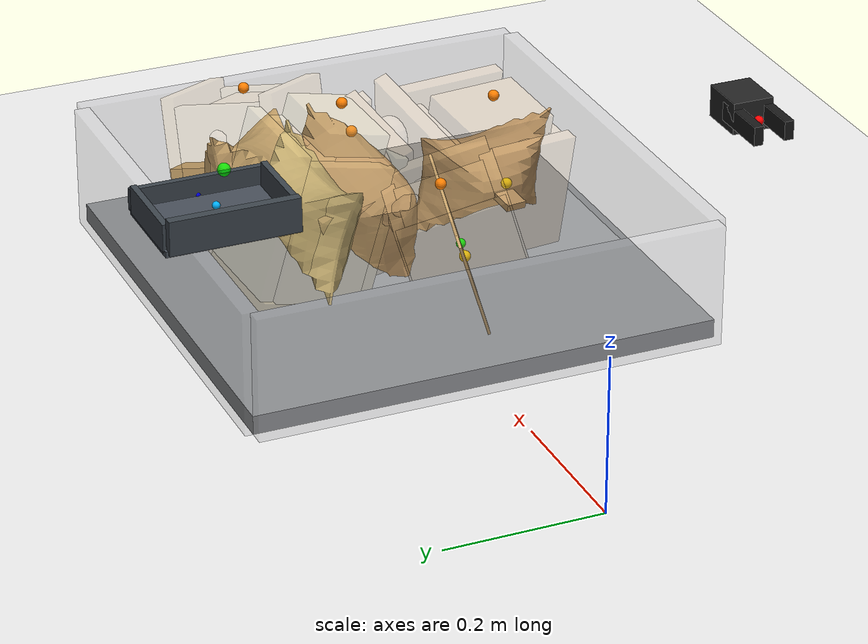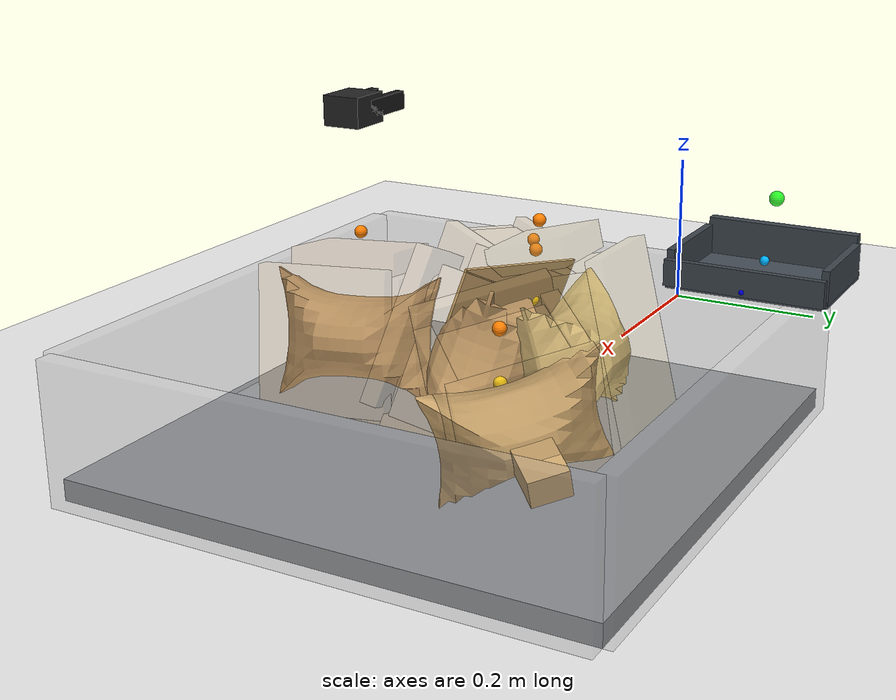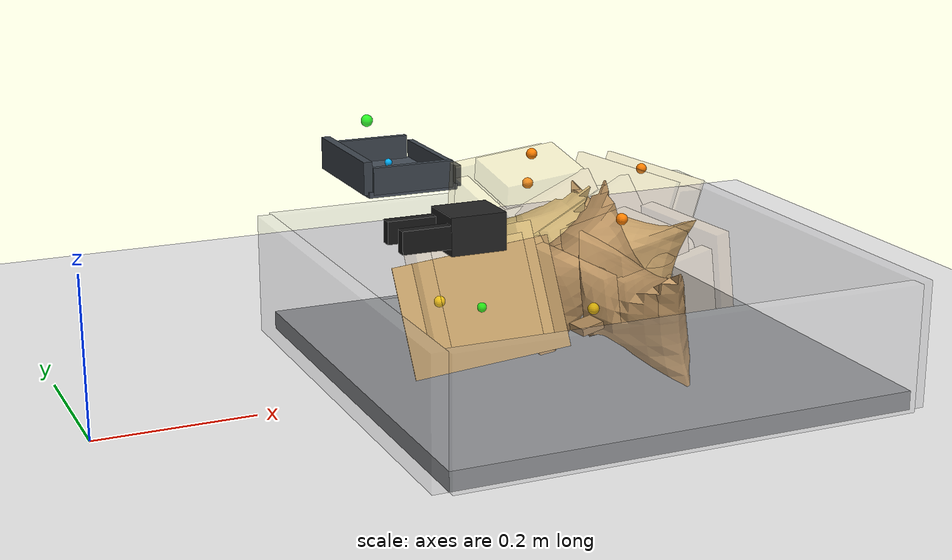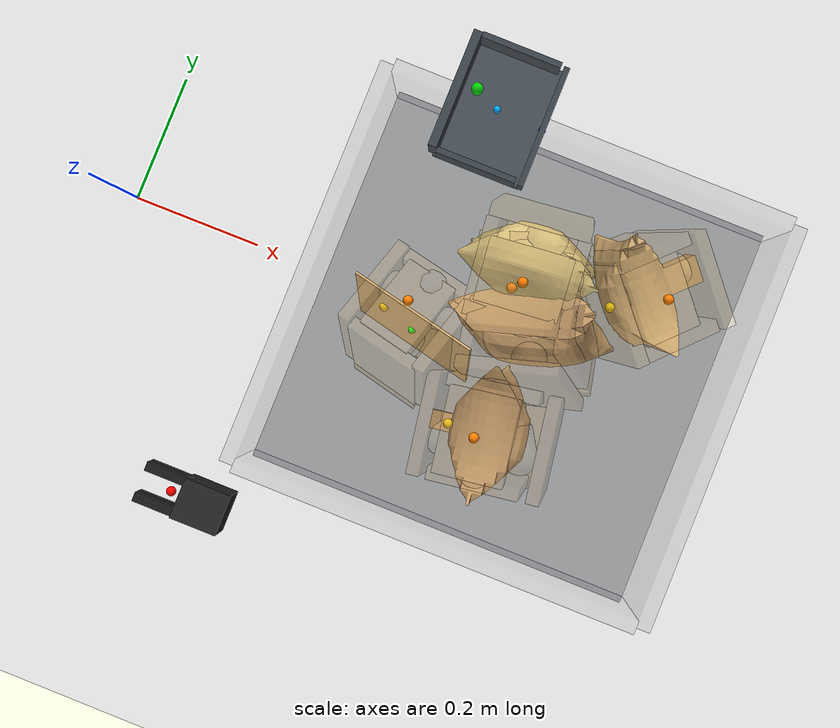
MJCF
<mujoco model="side_bulged_unstable_side_exposed_ep0_try1">
  <compiler angle="radian" coordinate="local" inertiafromgeom="true" meshdir="D:/Michael/2025/01.Research/01.Parceldetection/16.Pybullet/bullet3-master (1)/bullet3-master/examples/pybullet/examples/DeformableTest/Sackcodex2/object"/>
  <option timestep="0.002" gravity="0 0 -9.81" integrator="implicitfast" iterations="100" tolerance="1e-8"/>
  <size memory="768M" nconmax="12000"/>

  <visual>
    <global azimuth="128" elevation="-20"/>
    <headlight ambient="0.34 0.34 0.34" diffuse="0.78 0.78 0.78" specular="0.15 0.15 0.15"/>
    <rgba haze="0.11 0.13 0.18 1"/>
  </visual>

  <default>
    <geom condim="4" friction="1.15 0.03 0.01" margin="0.003" solimp="0.93 0.98 0.003" solref="0.012 1"/>
    <joint damping="1.2" armature="0.002"/>
    <position kp="2500" forcelimited="true" forcerange="-420 420"/>
    <motor ctrllimited="true"/>
  </default>

  <asset>
    <mesh name="sack_0_visual_mesh" file="sack9.obj" scale="0.0705 0.0705 0.0754"/>
    <mesh name="sack_1_visual_mesh" file="sack9.obj" scale="0.0721 0.0721 0.0796"/>
    <mesh name="sack_2_visual_mesh" file="sack10.obj" scale="0.0664 0.0664 0.0699"/>
    <mesh name="sack_3_visual_mesh" file="sack6Apply.obj" scale="0.0770 0.0770 0.0824"/>
    <mesh name="sack_4_visual_mesh" file="sack2.obj" scale="0.0669 0.0669 0.0697"/>
  </asset>

  <worldbody>
    <light name="key" pos="0.85 0.15 1.8" dir="-0.2 -0.1 -1" directional="true"/>
    <geom name="floor" type="plane" size="2 2 0.1" rgba="0.93 0.93 0.93 1"/>
    <geom name="work_pad" type="box" pos="0.62 0 0.012" size="0.30 0.30 0.012" rgba="0.60 0.61 0.62 1" friction="1.4 0.05 0.01"/>
    <geom name="corral_front" type="box" pos="0.93 0.00 0.08" size="0.010 0.30 0.08" rgba="0.55 0.55 0.58 0.22" friction="1.0 0.03 0.01"/>
    <geom name="corral_back" type="box" pos="0.31 0.00 0.08" size="0.010 0.30 0.08" rgba="0.55 0.55 0.58 0.18" friction="1.0 0.03 0.01"/>
    <geom name="corral_left" type="box" pos="0.62 0.30 0.08" size="0.30 0.010 0.08" rgba="0.55 0.55 0.58 0.14" friction="1.0 0.03 0.01"/>
    <geom name="corral_right" type="box" pos="0.62 -0.30 0.08" size="0.30 0.010 0.08" rgba="0.55 0.55 0.58 0.14" friction="1.0 0.03 0.01"/>
    <camera name="overview" pos="1.22 0.00 0.92" xyaxes="0 1 0 -0.46 0 0.88"/>

    <body name="gripper_mocap" mocap="true" pos="0.36 -0.33 0.30" quat="0.707107 0 -0.707107 0"/>
    <body name="scoop_mocap" mocap="true" pos="0.42 0.28 0.20" quat="1 0 0 0"/>

    <body name="gripper_ctrl_base" pos="0.36 -0.33 0.30">
      <inertial pos="0 0 0" mass="0.001" diaginertia="1e-6 1e-6 1e-6"/>
      <joint name="gripper_ctrl_x" type="slide" axis="1 0 0" limited="true" range="0.20 1.00"/>
      <body name="gripper_ctrl_y_body">
        <inertial pos="0 0 0" mass="0.001" diaginertia="1e-6 1e-6 1e-6"/>
        <joint name="gripper_ctrl_y" type="slide" axis="0 1 0" limited="true" range="-0.60 0.60"/>
        <body name="gripper_ctrl_z_body">
          <inertial pos="0 0 0" mass="0.001" diaginertia="1e-6 1e-6 1e-6"/>
          <joint name="gripper_ctrl_z" type="slide" axis="0 0 1" limited="true" range="0.04 0.70"/>
          <body name="gripper_ctrl_yaw_body">
            <inertial pos="0 0 0" mass="0.001" diaginertia="1e-6 1e-6 1e-6"/>
            <joint name="gripper_ctrl_yaw" type="hinge" axis="0 0 1" limited="true" range="-3.1416 3.1416"/>
            <body name="gripper_ctrl_pitch_body">
              <inertial pos="0 0 0" mass="0.001" diaginertia="1e-6 1e-6 1e-6"/>
              <joint name="gripper_ctrl_pitch" type="hinge" axis="0 1 0" limited="true" range="-3.1416 3.1416"/>
              <body name="gripper_ctrl_roll_body">
                <inertial pos="0 0 0" mass="0.001" diaginertia="1e-6 1e-6 1e-6"/>
                <joint name="gripper_ctrl_roll" type="hinge" axis="1 0 0" limited="true" range="-3.1416 3.1416"/>
              </body>
            </body>
          </body>
        </body>
      </body>
    </body>

    <body name="scoop_ctrl_base" pos="0.42 0.28 0.20">
      <inertial pos="0 0 0" mass="0.001" diaginertia="1e-6 1e-6 1e-6"/>
      <joint name="scoop_ctrl_x" type="slide" axis="1 0 0" limited="true" range="0.20 1.00"/>
      <body name="scoop_ctrl_y_body">
        <inertial pos="0 0 0" mass="0.001" diaginertia="1e-6 1e-6 1e-6"/>
        <joint name="scoop_ctrl_y" type="slide" axis="0 1 0" limited="true" range="-0.60 0.60"/>
        <body name="scoop_ctrl_z_body">
          <inertial pos="0 0 0" mass="0.001" diaginertia="1e-6 1e-6 1e-6"/>
          <joint name="scoop_ctrl_z" type="slide" axis="0 0 1" limited="true" range="0.04 0.70"/>
          <body name="scoop_ctrl_yaw_body">
            <inertial pos="0 0 0" mass="0.001" diaginertia="1e-6 1e-6 1e-6"/>
            <joint name="scoop_ctrl_yaw" type="hinge" axis="0 0 1" limited="true" range="-3.1416 3.1416"/>
            <body name="scoop_ctrl_pitch_body">
              <inertial pos="0 0 0" mass="0.001" diaginertia="1e-6 1e-6 1e-6"/>
              <joint name="scoop_ctrl_pitch" type="hinge" axis="0 1 0" limited="true" range="-3.1416 3.1416"/>
              <body name="scoop_ctrl_roll_body">
                <inertial pos="0 0 0" mass="0.001" diaginertia="1e-6 1e-6 1e-6"/>
                <joint name="scoop_ctrl_roll" type="hinge" axis="1 0 0" limited="true" range="-3.1416 3.1416"/>
              </body>
            </body>
          </body>
        </body>
      </body>
    </body>

    <body name="gripper_tool" pos="0.36 -0.33 0.30" quat="0.707107 0 -0.707107 0">
      <freejoint name="gripper_tool_free"/>
      <inertial pos="0 0 0.04" mass="0.08" diaginertia="0.0002 0.0002 0.0002"/>
      <geom name="gripper_palm" type="box" pos="0 0 0.030" size="0.020 0.026 0.030" rgba="0.14 0.14 0.14 1"/>
      <body name="left_finger_body" pos="0 0 0.072">
        <joint name="left_finger_slide" type="slide" axis="0 1 0" limited="true" range="0.010 0.040" damping="12"/>
        <geom name="left_finger_geom" type="box" pos="0 0.020 0" size="0.012 0.006 0.040" rgba="0.10 0.10 0.10 1" friction="2.2 0.05 0.01"/>
      </body>
      <body name="right_finger_body" pos="0 0 0.072">
        <joint name="right_finger_slide" type="slide" axis="0 -1 0" limited="true" range="0.010 0.040" damping="12"/>
        <geom name="right_finger_geom" type="box" pos="0 -0.020 0" size="0.012 0.006 0.040" rgba="0.10 0.10 0.10 1" friction="2.2 0.05 0.01"/>
      </body>
      <site name="gripper_pinch_site" pos="0 0 0.074" size="0.006" rgba="1 0 0 1"/>
    </body>

    <body name="scoop_tool" pos="0.42 0.28 0.20" quat="1 0 0 0">
      <freejoint name="scoop_tool_free"/>
      <inertial pos="0 0 0.02" mass="0.10" diaginertia="0.0003 0.0003 0.0003"/>
      <geom name="scoop_plate" type="box" pos="0.062 0 0" size="0.062 0.085 0.004" rgba="0.28 0.31 0.35 1" friction="1.7 0.05 0.01"/>
      <geom name="scoop_lip" type="box" pos="0.126 0 0.014" size="0.004 0.085 0.014" rgba="0.24 0.27 0.30 1" friction="1.7 0.05 0.01"/>
      <geom name="scoop_left_rail" type="box" pos="0.062 0.082 0.018" size="0.056 0.004 0.018" rgba="0.24 0.27 0.30 1"/>
      <geom name="scoop_right_rail" type="box" pos="0.062 -0.082 0.018" size="0.056 0.004 0.018" rgba="0.24 0.27 0.30 1"/>
      <geom name="scoop_backstop" type="box" pos="0.000 0 0.022" size="0.006 0.082 0.022" rgba="0.24 0.27 0.30 1"/>
      <site name="scoop_tip_site" pos="0.126 0 0.005" size="0.005" rgba="0 0 1 1"/>
      <site name="scoop_center_site" pos="0.060 0 0.020" size="0.005" rgba="0 0.7 1 1"/>
      <site name="score_overlay_site" pos="0.030 0 0.080" size="0.008" rgba="0 1 0 0.8"/>
    </body>

    <body name="sack_0" pos="0.6356 -0.1278 0.1162" euler="0.0597 -0.1531 -1.4072">
      <freejoint name="sack_0_free"/>

      <geom name="sack_0_visual" type="mesh" mesh="sack_0_visual_mesh" rgba="0.760 0.600 0.400 0.92" contype="0" conaffinity="0"/>
      <site name="sack_0_center_site" pos="0 0 0.000" size="0.006" rgba="0 1 0 1"/>
      <site name="sack_0_top_site" pos="0 -0.0060 0.1160" size="0.007" rgba="1 0.5 0 1"/>
      <site name="sack_0_side_site" pos="0.0000 -0.0586 0.018" size="0.007" rgba="1 0.8 0 1"/>

      <geom name="sack_0_core_geom" type="ellipsoid" pos="0 0 0.0058" size="0.0451 0.0356 0.0796" mass="0.9340" rgba="0.760 0.600 0.400 0.12" friction="1.0 0.03 0.01"/>
      <geom name="sack_0_core_front" type="capsule" fromto="-0.0200 0 -0.0200 0.0450 0 0.0600" size="0.0310" mass="0.2224" rgba="0.760 0.600 0.400 0.10"/>
      <geom name="sack_0_core_left" type="capsule" fromto="-0.008 0.0365 -0.010 0.018 0.0545 0.060" size="0.0242" mass="0.4003" rgba="0.760 0.600 0.400 0.10"/>
      <geom name="sack_0_core_right" type="capsule" fromto="-0.006 -0.0365 -0.008 0.020 -0.0565 0.054" size="0.0222" mass="0.4003" rgba="0.760 0.600 0.400 0.10"/>

      <body name="sack_0_bottom_support_proxy_body" pos="0 0.0109 -0.0800">
        <joint name="sack_0_bottom_x" type="slide" axis="1 0 0" limited="true" range="-0.012 0.012" damping="18" stiffness="489.6"/>
        <joint name="sack_0_bottom_y" type="slide" axis="0 1 0" limited="true" range="-0.012 0.012" damping="18" stiffness="489.6"/>
        <joint name="sack_0_bottom_z" type="slide" axis="0 0 1" limited="true" range="-0.008 0.020" damping="24" stiffness="602.9"/>
        <geom name="sack_0_bottom_support_proxy" type="box" size="0.0760 0.0646 0.0100" mass="0.1779" rgba="0.760 0.600 0.400 0.34" friction="1.55 0.05 0.01"/>
      </body>

      <body name="sack_0_top_grasp_proxy_body" pos="0.0000 -0.0060 0.0860">
        <joint name="sack_0_top_x" type="slide" axis="1 0 0" limited="true" range="-0.018 0.018" damping="12" stiffness="188.2"/>
        <joint name="sack_0_top_y" type="slide" axis="0 1 0" limited="true" range="-0.018 0.018" damping="12" stiffness="188.2"/>
        <joint name="sack_0_top_z" type="slide" axis="0 0 1" limited="true" range="-0.040 0.010" damping="14" stiffness="139.9"/>
        <geom name="sack_0_top_grasp_proxy" type="box" size="0.0600 0.0486 0.0150" mass="0.1334" rgba="0.760 0.600 0.400 0.26" friction="2.2 0.05 0.01"/>
      </body>

      <body name="sack_0_left_side_proxy_body" pos="0 0.0851 0.010">
        <joint name="sack_0_left_side_slide" type="slide" axis="0 -1 0" limited="true" range="-0.028 0.016" damping="16" stiffness="249.2"/>
        <geom name="sack_0_left_side_proxy" type="box" size="0.0720 0.0090 0.0780" mass="0.1334" rgba="0.760 0.600 0.400 0.24"/>
      </body>

      <body name="sack_0_right_side_proxy_body" pos="0 -0.0811 0.010">
        <joint name="sack_0_right_side_slide" type="slide" axis="0 1 0" limited="true" range="-0.028 0.016" damping="16" stiffness="230.8"/>
        <geom name="sack_0_right_side_proxy" type="box" size="0.0720 0.0090 0.0780" mass="0.1334" rgba="0.760 0.600 0.400 0.24"/>
      </body>

      <body name="sack_0_front_proxy_body" pos="0.0660 0 0.000">
        <joint name="sack_0_front_slide" type="slide" axis="-1 0 0" limited="true" range="-0.022 0.012" damping="15" stiffness="234.8"/>
        <geom name="sack_0_front_support_proxy" type="box" size="0.0090 0.0646 0.0760" mass="0.1112" rgba="0.760 0.600 0.400 0.22"/>
      </body>

      <body name="sack_0_back_proxy_body" pos="-0.0660 0 0.000">
        <joint name="sack_0_back_slide" type="slide" axis="1 0 0" limited="true" range="-0.022 0.012" damping="15" stiffness="216.5"/>
        <geom name="sack_0_back_support_proxy" type="box" size="0.0090 0.0646 0.0760" mass="0.1112" rgba="0.760 0.600 0.400 0.22"/>
      </body>

      <body name="sack_0_shape_proxy_body" pos="0.0000 -0.0285 0.0301">
        <joint name="sack_0_bulge_y" type="slide" axis="0 1 0" limited="true" range="-0.020 0.020" damping="8" stiffness="80.2"/>
        <joint name="sack_0_bulge_z" type="slide" axis="0 0 1" limited="true" range="-0.014 0.028" damping="8" stiffness="85.2"/>
        <geom name="sack_0_shape_proxy" type="ellipsoid" size="0.0202 0.0163 0.0261" mass="0.0890" rgba="0.760 0.600 0.400 0.28"/>
      </body>
    </body>

    <body name="sack_1" pos="0.6016 0.1175 0.1238" euler="0.2575 -0.0501 0.1069">
      <freejoint name="sack_1_free"/>

      <geom name="sack_1_visual" type="mesh" mesh="sack_1_visual_mesh" rgba="0.840 0.740 0.480 0.92" contype="0" conaffinity="0"/>
      <site name="sack_1_center_site" pos="0 0 0.000" size="0.006" rgba="0 1 0 1"/>
      <site name="sack_1_top_site" pos="0 -0.0060 0.1480" size="0.007" rgba="1 0.5 0 1"/>
      <site name="sack_1_side_site" pos="0.0000 -0.0520 0.018" size="0.007" rgba="1 0.8 0 1"/>

      <geom name="sack_1_core_geom" type="ellipsoid" pos="0 0 0.0060" size="0.0511 0.0434 0.0916" mass="1.1100" rgba="0.840 0.740 0.480 0.12" friction="1.0 0.03 0.01"/>
      <geom name="sack_1_core_front" type="capsule" fromto="-0.0200 0 -0.0200 0.0450 0 0.0600" size="0.0322" mass="0.2643" rgba="0.840 0.740 0.480 0.10"/>
      <geom name="sack_1_core_left" type="capsule" fromto="-0.008 0.0282 -0.010 0.018 0.0462 0.060" size="0.0241" mass="0.4757" rgba="0.840 0.740 0.480 0.10"/>
      <geom name="sack_1_core_right" type="capsule" fromto="-0.006 -0.0282 -0.008 0.020 -0.0482 0.054" size="0.0221" mass="0.4757" rgba="0.840 0.740 0.480 0.10"/>

      <body name="sack_1_bottom_support_proxy_body" pos="0 0.0152 -0.0997">
        <joint name="sack_1_bottom_x" type="slide" axis="1 0 0" limited="true" range="-0.012 0.012" damping="18" stiffness="524.8"/>
        <joint name="sack_1_bottom_y" type="slide" axis="0 1 0" limited="true" range="-0.012 0.012" damping="18" stiffness="524.8"/>
        <joint name="sack_1_bottom_z" type="slide" axis="0 0 1" limited="true" range="-0.008 0.020" damping="24" stiffness="645.8"/>
        <geom name="sack_1_bottom_support_proxy" type="box" size="0.0729 0.0580 0.0100" mass="0.2114" rgba="0.840 0.740 0.480 0.34" friction="1.55 0.05 0.01"/>
      </body>

      <body name="sack_1_top_grasp_proxy_body" pos="0.0000 -0.0060 0.1180">
        <joint name="sack_1_top_x" type="slide" axis="1 0 0" limited="true" range="-0.018 0.018" damping="12" stiffness="201.9"/>
        <joint name="sack_1_top_y" type="slide" axis="0 1 0" limited="true" range="-0.018 0.018" damping="12" stiffness="201.9"/>
        <joint name="sack_1_top_z" type="slide" axis="0 0 1" limited="true" range="-0.040 0.010" damping="14" stiffness="151.6"/>
        <geom name="sack_1_top_grasp_proxy" type="box" size="0.0569 0.0420 0.0150" mass="0.1586" rgba="0.840 0.740 0.480 0.26" friction="2.2 0.05 0.01"/>
      </body>

      <body name="sack_1_left_side_proxy_body" pos="0 0.0702 0.010">
        <joint name="sack_1_left_side_slide" type="slide" axis="0 -1 0" limited="true" range="-0.028 0.016" damping="16" stiffness="273.1"/>
        <geom name="sack_1_left_side_proxy" type="box" size="0.0689 0.0090 0.0977" mass="0.1586" rgba="0.840 0.740 0.480 0.24"/>
      </body>

      <body name="sack_1_right_side_proxy_body" pos="0 -0.0662 0.010">
        <joint name="sack_1_right_side_slide" type="slide" axis="0 1 0" limited="true" range="-0.028 0.016" damping="16" stiffness="252.8"/>
        <geom name="sack_1_right_side_proxy" type="box" size="0.0689 0.0090 0.0977" mass="0.1586" rgba="0.840 0.740 0.480 0.24"/>
      </body>

      <body name="sack_1_front_proxy_body" pos="0.0629 0 0.000">
        <joint name="sack_1_front_slide" type="slide" axis="-1 0 0" limited="true" range="-0.022 0.012" damping="15" stiffness="252.4"/>
        <geom name="sack_1_front_support_proxy" type="box" size="0.0090 0.0580 0.0957" mass="0.1321" rgba="0.840 0.740 0.480 0.22"/>
      </body>

      <body name="sack_1_back_proxy_body" pos="-0.0629 0 0.000">
        <joint name="sack_1_back_slide" type="slide" axis="1 0 0" limited="true" range="-0.022 0.012" damping="15" stiffness="232.1"/>
        <geom name="sack_1_back_support_proxy" type="box" size="0.0090 0.0580 0.0957" mass="0.1321" rgba="0.840 0.740 0.480 0.22"/>
      </body>

      <body name="sack_1_shape_proxy_body" pos="0.0000 -0.0202 0.0184">
        <joint name="sack_1_bulge_y" type="slide" axis="0 1 0" limited="true" range="-0.020 0.020" damping="8" stiffness="60.0"/>
        <joint name="sack_1_bulge_z" type="slide" axis="0 0 1" limited="true" range="-0.014 0.028" damping="8" stiffness="70.0"/>
        <geom name="sack_1_shape_proxy" type="ellipsoid" size="0.0201 0.0162 0.0260" mass="0.1057" rgba="0.840 0.740 0.480 0.28"/>
      </body>
    </body>

    <body name="sack_2" pos="0.7570 0.1342 0.1073" euler="0.0023 0.2970 2.3339">
      <freejoint name="sack_2_free"/>

      <geom name="sack_2_visual" type="mesh" mesh="sack_2_visual_mesh" rgba="0.820 0.670 0.440 0.92" contype="0" conaffinity="0"/>
      <site name="sack_2_center_site" pos="0 0 0.000" size="0.006" rgba="0 1 0 1"/>
      <site name="sack_2_top_site" pos="0 0.0060 0.1111" size="0.007" rgba="1 0.5 0 1"/>
      <site name="sack_2_side_site" pos="0.0000 0.0502 0.018" size="0.007" rgba="1 0.8 0 1"/>

      <geom name="sack_2_core_geom" type="ellipsoid" pos="0 0 0.0057" size="0.0457 0.0360 0.0684" mass="0.8246" rgba="0.820 0.670 0.440 0.12" friction="1.0 0.03 0.01"/>
      <geom name="sack_2_core_front" type="capsule" fromto="-0.0200 0 -0.0200 0.0450 0 0.0600" size="0.0305" mass="0.1963" rgba="0.820 0.670 0.440 0.10"/>
      <geom name="sack_2_core_left" type="capsule" fromto="-0.008 0.0304 -0.010 0.018 0.0484 0.060" size="0.0241" mass="0.3534" rgba="0.820 0.670 0.440 0.10"/>
      <geom name="sack_2_core_right" type="capsule" fromto="-0.006 -0.0304 -0.008 0.020 -0.0504 0.054" size="0.0221" mass="0.3534" rgba="0.820 0.670 0.440 0.10"/>

      <body name="sack_2_bottom_support_proxy_body" pos="0 0.0075 -0.1060">
        <joint name="sack_2_bottom_x" type="slide" axis="1 0 0" limited="true" range="-0.012 0.012" damping="18" stiffness="473.6"/>
        <joint name="sack_2_bottom_y" type="slide" axis="0 1 0" limited="true" range="-0.012 0.012" damping="18" stiffness="473.6"/>
        <joint name="sack_2_bottom_z" type="slide" axis="0 0 1" limited="true" range="-0.008 0.020" damping="24" stiffness="583.3"/>
        <geom name="sack_2_bottom_support_proxy" type="box" size="0.0734 0.0562 0.0100" mass="0.1571" rgba="0.820 0.670 0.440 0.34" friction="1.55 0.05 0.01"/>
      </body>

      <body name="sack_2_top_grasp_proxy_body" pos="0.0000 0.0060 0.0811">
        <joint name="sack_2_top_x" type="slide" axis="1 0 0" limited="true" range="-0.018 0.018" damping="12" stiffness="182.0"/>
        <joint name="sack_2_top_y" type="slide" axis="0 1 0" limited="true" range="-0.018 0.018" damping="12" stiffness="182.0"/>
        <joint name="sack_2_top_z" type="slide" axis="0 0 1" limited="true" range="-0.040 0.010" damping="14" stiffness="134.5"/>
        <geom name="sack_2_top_grasp_proxy" type="box" size="0.0574 0.0402 0.0150" mass="0.1178" rgba="0.820 0.670 0.440 0.26" friction="2.2 0.05 0.01"/>
      </body>

      <body name="sack_2_left_side_proxy_body" pos="0 0.0705 0.010">
        <joint name="sack_2_left_side_slide" type="slide" axis="0 -1 0" limited="true" range="-0.028 0.016" damping="16" stiffness="238.0"/>
        <geom name="sack_2_left_side_proxy" type="box" size="0.0694 0.0090 0.1040" mass="0.1178" rgba="0.820 0.670 0.440 0.24"/>
      </body>

      <body name="sack_2_right_side_proxy_body" pos="0 -0.0665 0.010">
        <joint name="sack_2_right_side_slide" type="slide" axis="0 1 0" limited="true" range="-0.028 0.016" damping="16" stiffness="220.6"/>
        <geom name="sack_2_right_side_proxy" type="box" size="0.0694 0.0090 0.1040" mass="0.1178" rgba="0.820 0.670 0.440 0.24"/>
      </body>

      <body name="sack_2_front_proxy_body" pos="0.0634 0 0.000">
        <joint name="sack_2_front_slide" type="slide" axis="-1 0 0" limited="true" range="-0.022 0.012" damping="15" stiffness="226.8"/>
        <geom name="sack_2_front_support_proxy" type="box" size="0.0090 0.0562 0.1020" mass="0.0982" rgba="0.820 0.670 0.440 0.22"/>
      </body>

      <body name="sack_2_back_proxy_body" pos="-0.0634 0 0.000">
        <joint name="sack_2_back_slide" type="slide" axis="1 0 0" limited="true" range="-0.022 0.012" damping="15" stiffness="209.4"/>
        <geom name="sack_2_back_support_proxy" type="box" size="0.0090 0.0562 0.1020" mass="0.0982" rgba="0.820 0.670 0.440 0.22"/>
      </body>

      <body name="sack_2_shape_proxy_body" pos="0.0000 0.0224 0.0355">
        <joint name="sack_2_bulge_y" type="slide" axis="0 1 0" limited="true" range="-0.020 0.020" damping="8" stiffness="90.9"/>
        <joint name="sack_2_bulge_z" type="slide" axis="0 0 1" limited="true" range="-0.014 0.028" damping="8" stiffness="93.2"/>
        <geom name="sack_2_shape_proxy" type="ellipsoid" size="0.0201 0.0162 0.0263" mass="0.0785" rgba="0.820 0.670 0.440 0.28"/>
      </body>
    </body>

    <body name="sack_3" pos="0.6377 0.0366 0.1134" euler="-0.1942 -0.4023 0.1962">
      <freejoint name="sack_3_free"/>

      <geom name="sack_3_visual" type="mesh" mesh="sack_3_visual_mesh" rgba="0.760 0.600 0.400 0.92" contype="0" conaffinity="0"/>
      <site name="sack_3_center_site" pos="0 0 0.000" size="0.006" rgba="0 1 0 1"/>
      <site name="sack_3_top_site" pos="0 0.0060 0.1308" size="0.007" rgba="1 0.5 0 1"/>
      <site name="sack_3_side_site" pos="0.0000 0.0589 0.018" size="0.007" rgba="1 0.8 0 1"/>

      <geom name="sack_3_core_geom" type="ellipsoid" pos="0 0 0.0059" size="0.0451 0.0356 0.0796" mass="0.7951" rgba="0.760 0.600 0.400 0.12" friction="1.0 0.03 0.01"/>
      <geom name="sack_3_core_front" type="capsule" fromto="-0.0200 0 -0.0200 0.0450 0 0.0600" size="0.0310" mass="0.1893" rgba="0.760 0.600 0.400 0.10"/>
      <geom name="sack_3_core_left" type="capsule" fromto="-0.008 0.0449 -0.010 0.018 0.0629 0.060" size="0.0242" mass="0.3408" rgba="0.760 0.600 0.400 0.10"/>
      <geom name="sack_3_core_right" type="capsule" fromto="-0.006 -0.0449 -0.008 0.020 -0.0649 0.054" size="0.0223" mass="0.3408" rgba="0.760 0.600 0.400 0.10"/>

      <body name="sack_3_bottom_support_proxy_body" pos="0 -0.0050 -0.0884">
        <joint name="sack_3_bottom_x" type="slide" axis="1 0 0" limited="true" range="-0.012 0.012" damping="18" stiffness="489.9"/>
        <joint name="sack_3_bottom_y" type="slide" axis="0 1 0" limited="true" range="-0.012 0.012" damping="18" stiffness="489.9"/>
        <joint name="sack_3_bottom_z" type="slide" axis="0 0 1" limited="true" range="-0.008 0.020" damping="24" stiffness="603.2"/>
        <geom name="sack_3_bottom_support_proxy" type="box" size="0.0760 0.0649 0.0100" mass="0.1514" rgba="0.760 0.600 0.400 0.34" friction="1.55 0.05 0.01"/>
      </body>

      <body name="sack_3_top_grasp_proxy_body" pos="0.0000 0.0060 0.1008">
        <joint name="sack_3_top_x" type="slide" axis="1 0 0" limited="true" range="-0.018 0.018" damping="12" stiffness="188.3"/>
        <joint name="sack_3_top_y" type="slide" axis="0 1 0" limited="true" range="-0.018 0.018" damping="12" stiffness="188.3"/>
        <joint name="sack_3_top_z" type="slide" axis="0 0 1" limited="true" range="-0.040 0.010" damping="14" stiffness="140.0"/>
        <geom name="sack_3_top_grasp_proxy" type="box" size="0.0600 0.0489 0.0150" mass="0.1136" rgba="0.760 0.600 0.400 0.26" friction="2.2 0.05 0.01"/>
      </body>

      <body name="sack_3_left_side_proxy_body" pos="0 0.0938 0.010">
        <joint name="sack_3_left_side_slide" type="slide" axis="0 -1 0" limited="true" range="-0.028 0.016" damping="16" stiffness="249.5"/>
        <geom name="sack_3_left_side_proxy" type="box" size="0.0720 0.0090 0.0864" mass="0.1136" rgba="0.760 0.600 0.400 0.24"/>
      </body>

      <body name="sack_3_right_side_proxy_body" pos="0 -0.0898 0.010">
        <joint name="sack_3_right_side_slide" type="slide" axis="0 1 0" limited="true" range="-0.028 0.016" damping="16" stiffness="231.2"/>
        <geom name="sack_3_right_side_proxy" type="box" size="0.0720 0.0090 0.0864" mass="0.1136" rgba="0.760 0.600 0.400 0.24"/>
      </body>

      <body name="sack_3_front_proxy_body" pos="0.0660 0 0.000">
        <joint name="sack_3_front_slide" type="slide" axis="-1 0 0" limited="true" range="-0.022 0.012" damping="15" stiffness="234.9"/>
        <geom name="sack_3_front_support_proxy" type="box" size="0.0090 0.0649 0.0844" mass="0.0947" rgba="0.760 0.600 0.400 0.22"/>
      </body>

      <body name="sack_3_back_proxy_body" pos="-0.0660 0 0.000">
        <joint name="sack_3_back_slide" type="slide" axis="1 0 0" limited="true" range="-0.022 0.012" damping="15" stiffness="216.6"/>
        <geom name="sack_3_back_support_proxy" type="box" size="0.0090 0.0649 0.0844" mass="0.0947" rgba="0.760 0.600 0.400 0.22"/>
      </body>

      <body name="sack_3_shape_proxy_body" pos="0.0000 0.0369 0.0300">
        <joint name="sack_3_bulge_y" type="slide" axis="0 1 0" limited="true" range="-0.020 0.020" damping="8" stiffness="80.1"/>
        <joint name="sack_3_bulge_z" type="slide" axis="0 0 1" limited="true" range="-0.014 0.028" damping="8" stiffness="85.1"/>
        <geom name="sack_3_shape_proxy" type="ellipsoid" size="0.0202 0.0165 0.0261" mass="0.0757" rgba="0.760 0.600 0.400 0.28"/>
      </body>
    </body>

    <body name="sack_4" pos="0.4781 -0.0329 0.1079" euler="-0.3274 -0.0894 1.3126">
      <freejoint name="sack_4_free"/>

      <geom name="sack_4_visual" type="mesh" mesh="sack_4_visual_mesh" rgba="0.820 0.670 0.440 0.92" contype="0" conaffinity="0"/>
      <site name="sack_4_center_site" pos="0 0 0.000" size="0.006" rgba="0 1 0 1"/>
      <site name="sack_4_top_site" pos="0 0.0060 0.1002" size="0.007" rgba="1 0.5 0 1"/>
      <site name="sack_4_side_site" pos="0.0000 0.0490 0.018" size="0.007" rgba="1 0.8 0 1"/>

      <geom name="sack_4_core_geom" type="ellipsoid" pos="0 0 0.0057" size="0.0454 0.0355 0.0677" mass="0.6250" rgba="0.820 0.670 0.440 0.12" friction="1.0 0.03 0.01"/>
      <geom name="sack_4_core_front" type="capsule" fromto="-0.0200 0 -0.0200 0.0450 0 0.0600" size="0.0300" mass="0.1488" rgba="0.820 0.670 0.440 0.10"/>
      <geom name="sack_4_core_left" type="capsule" fromto="-0.008 0.0247 -0.010 0.018 0.0427 0.060" size="0.0240" mass="0.2679" rgba="0.820 0.670 0.440 0.10"/>
      <geom name="sack_4_core_right" type="capsule" fromto="-0.006 -0.0247 -0.008 0.020 -0.0447 0.054" size="0.0221" mass="0.2679" rgba="0.820 0.670 0.440 0.10"/>

      <body name="sack_4_bottom_support_proxy_body" pos="0 0.0001 -0.0840">
        <joint name="sack_4_bottom_x" type="slide" axis="1 0 0" limited="true" range="-0.012 0.012" damping="18" stiffness="461.4"/>
        <joint name="sack_4_bottom_y" type="slide" axis="0 1 0" limited="true" range="-0.012 0.012" damping="18" stiffness="461.4"/>
        <joint name="sack_4_bottom_z" type="slide" axis="0 0 1" limited="true" range="-0.008 0.020" damping="24" stiffness="568.4"/>
        <geom name="sack_4_bottom_support_proxy" type="box" size="0.0730 0.0550 0.0100" mass="0.1191" rgba="0.820 0.670 0.440 0.34" friction="1.55 0.05 0.01"/>
      </body>

      <body name="sack_4_top_grasp_proxy_body" pos="0.0000 0.0060 0.0702">
        <joint name="sack_4_top_x" type="slide" axis="1 0 0" limited="true" range="-0.018 0.018" damping="12" stiffness="177.2"/>
        <joint name="sack_4_top_y" type="slide" axis="0 1 0" limited="true" range="-0.018 0.018" damping="12" stiffness="177.2"/>
        <joint name="sack_4_top_z" type="slide" axis="0 0 1" limited="true" range="-0.040 0.010" damping="14" stiffness="130.5"/>
        <geom name="sack_4_top_grasp_proxy" type="box" size="0.0570 0.0390 0.0150" mass="0.0893" rgba="0.820 0.670 0.440 0.26" friction="2.2 0.05 0.01"/>
      </body>

      <body name="sack_4_left_side_proxy_body" pos="0 0.0637 0.010">
        <joint name="sack_4_left_side_slide" type="slide" axis="0 -1 0" limited="true" range="-0.028 0.016" damping="16" stiffness="230.1"/>
        <geom name="sack_4_left_side_proxy" type="box" size="0.0690 0.0090 0.0820" mass="0.0893" rgba="0.820 0.670 0.440 0.24"/>
      </body>

      <body name="sack_4_right_side_proxy_body" pos="0 -0.0597 0.010">
        <joint name="sack_4_right_side_slide" type="slide" axis="0 1 0" limited="true" range="-0.028 0.016" damping="16" stiffness="213.3"/>
        <geom name="sack_4_right_side_proxy" type="box" size="0.0690 0.0090 0.0820" mass="0.0893" rgba="0.820 0.670 0.440 0.24"/>
      </body>

      <body name="sack_4_front_proxy_body" pos="0.0630 0 0.000">
        <joint name="sack_4_front_slide" type="slide" axis="-1 0 0" limited="true" range="-0.022 0.012" damping="15" stiffness="220.7"/>
        <geom name="sack_4_front_support_proxy" type="box" size="0.0090 0.0550 0.0800" mass="0.0744" rgba="0.820 0.670 0.440 0.22"/>
      </body>

      <body name="sack_4_back_proxy_body" pos="-0.0630 0 0.000">
        <joint name="sack_4_back_slide" type="slide" axis="1 0 0" limited="true" range="-0.022 0.012" damping="15" stiffness="204.0"/>
        <geom name="sack_4_back_support_proxy" type="box" size="0.0090 0.0550 0.0800" mass="0.0744" rgba="0.820 0.670 0.440 0.22"/>
      </body>

      <body name="sack_4_shape_proxy_body" pos="0.0000 0.0167 0.0395">
        <joint name="sack_4_bulge_y" type="slide" axis="0 1 0" limited="true" range="-0.020 0.020" damping="8" stiffness="99.1"/>
        <joint name="sack_4_bulge_z" type="slide" axis="0 0 1" limited="true" range="-0.014 0.028" damping="8" stiffness="99.3"/>
        <geom name="sack_4_shape_proxy" type="ellipsoid" size="0.0200 0.0161 0.0262" mass="0.0595" rgba="0.820 0.670 0.440 0.28"/>
      </body>
    </body>
  </worldbody>

  <equality>
    <weld name="gripper_follow" body1="gripper_mocap" body2="gripper_tool" torquescale="400" solref="0.002 1" solimp="0.99 0.999 0.0001"/>
    <weld name="scoop_follow" body1="scoop_mocap" body2="scoop_tool" torquescale="500" solref="0.002 1" solimp="0.99 0.999 0.0001"/>
  </equality>

  <actuator>
    <position name="gripper_ctrl_x_act" joint="gripper_ctrl_x" ctrlrange="0.20 1.00" kp="3500" forcerange="-300 300"/>
    <position name="gripper_ctrl_y_act" joint="gripper_ctrl_y" ctrlrange="-0.60 0.60" kp="3500" forcerange="-300 300"/>
    <position name="gripper_ctrl_z_act" joint="gripper_ctrl_z" ctrlrange="0.04 0.70" kp="3500" forcerange="-300 300"/>
    <position name="gripper_ctrl_yaw_act" joint="gripper_ctrl_yaw" ctrlrange="-3.1416 3.1416" kp="1800" forcerange="-250 250"/>
    <position name="gripper_ctrl_pitch_act" joint="gripper_ctrl_pitch" ctrlrange="-3.1416 3.1416" kp="1800" forcerange="-250 250"/>
    <position name="gripper_ctrl_roll_act" joint="gripper_ctrl_roll" ctrlrange="-3.1416 3.1416" kp="1800" forcerange="-250 250"/>
    <position name="scoop_ctrl_x_act" joint="scoop_ctrl_x" ctrlrange="0.20 1.00" kp="3500" forcerange="-300 300"/>
    <position name="scoop_ctrl_y_act" joint="scoop_ctrl_y" ctrlrange="-0.60 0.60" kp="3500" forcerange="-300 300"/>
    <position name="scoop_ctrl_z_act" joint="scoop_ctrl_z" ctrlrange="0.04 0.70" kp="3500" forcerange="-300 300"/>
    <position name="scoop_ctrl_yaw_act" joint="scoop_ctrl_yaw" ctrlrange="-3.1416 3.1416" kp="1800" forcerange="-250 250"/>
    <position name="scoop_ctrl_pitch_act" joint="scoop_ctrl_pitch" ctrlrange="-3.1416 3.1416" kp="1800" forcerange="-250 250"/>
    <position name="scoop_ctrl_roll_act" joint="scoop_ctrl_roll" ctrlrange="-3.1416 3.1416" kp="1800" forcerange="-250 250"/>
    <position name="left_finger_act" joint="left_finger_slide" ctrlrange="0.010 0.040" kp="2800" forcerange="-220 220"/>
    <position name="right_finger_act" joint="right_finger_slide" ctrlrange="0.010 0.040" kp="2800" forcerange="-220 220"/>
  </actuator>

  <contact>
    <exclude body1="sack_0_top_grasp_proxy_body" body2="sack_0_left_side_proxy_body"/>
    <exclude body1="sack_0_top_grasp_proxy_body" body2="sack_0_right_side_proxy_body"/>
    <exclude body1="sack_1_top_grasp_proxy_body" body2="sack_1_left_side_proxy_body"/>
    <exclude body1="sack_1_top_grasp_proxy_body" body2="sack_1_right_side_proxy_body"/>
    <exclude body1="sack_2_top_grasp_proxy_body" body2="sack_2_left_side_proxy_body"/>
    <exclude body1="sack_2_top_grasp_proxy_body" body2="sack_2_right_side_proxy_body"/>
    <exclude body1="sack_3_top_grasp_proxy_body" body2="sack_3_left_side_proxy_body"/>
    <exclude body1="sack_3_top_grasp_proxy_body" body2="sack_3_right_side_proxy_body"/>
    <exclude body1="sack_4_top_grasp_proxy_body" body2="sack_4_left_side_proxy_body"/>
    <exclude body1="sack_4_top_grasp_proxy_body" body2="sack_4_right_side_proxy_body"/>
  </contact>
</mujoco>
